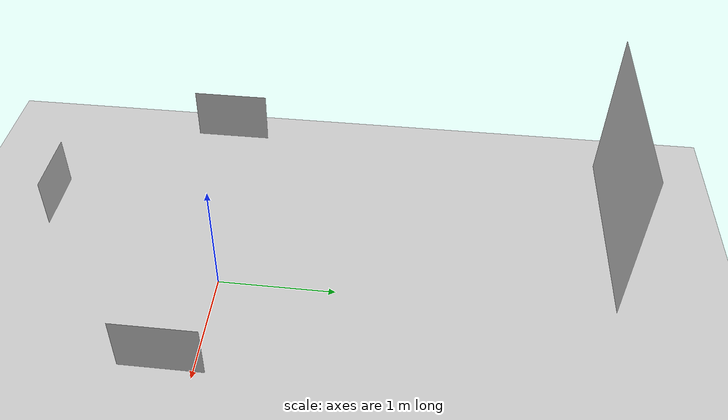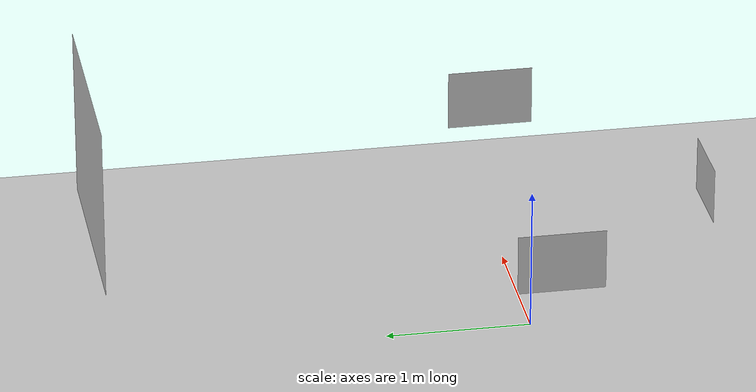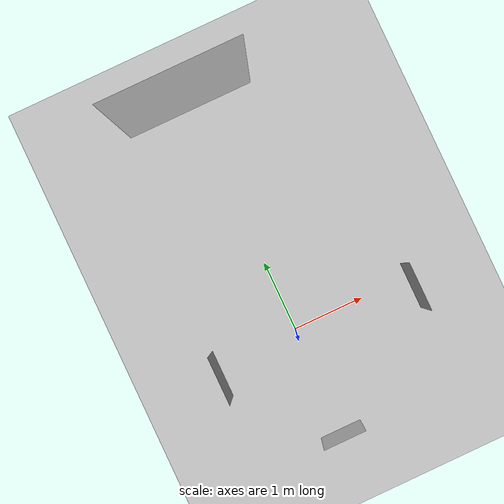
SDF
<sdf version="1.6">
 <world name="default">
  <light name="sun" type="directional">
   <pose>0 0 10 0 -0 0</pose>
   <diffuse>0.8 0.8 0.8 1</diffuse>
   <specular>0.2 0.2 0.2 1</specular>
   <attenuation>
    <range>1000</range>
    <constant>0.9</constant>
    <linear>0.01</linear>
    <quadratic>0.001</quadratic>
   </attenuation>
   <direction>-0.5 0.1 -0.9</direction>
  </light>
  <model name="ground_plane">
   <static>1</static>
   <link name="link">
    <collision name="collision">
     <geometry><plane><normal>0 0 1</normal><size>100 100</size></plane></geometry>
     <surface>
      <contact><collide_bitmask>65535</collide_bitmask></contact>
      <friction><ode><mu>100</mu><mu2>50</mu2></ode></friction>
     </surface>
    </collision>
    <visual name="visual">
     <cast_shadows>0</cast_shadows>
     <geometry><plane><normal>0 0 1</normal><size>100 100</size></plane></geometry>
     <material>
      <script><uri>file://media/materials/scripts/gazebo.material</uri><name>Gazebo/Grey</name></script>
     </material>
    </visual>
   </link>
  </model>
  <gravity>0 0 -9.8</gravity>
  <magnetic_field>6e-06 2.3e-05 -4.2e-05</magnetic_field>
  <atmosphere type="adiabatic"/>
  <physics name="default_physics" default="0" type="ode">
   <max_step_size>0.001</max_step_size>
   <real_time_factor>1</real_time_factor>
   <real_time_update_rate>1000</real_time_update_rate>
  </physics>
  <scene><ambient>0.4 0.4 0.4 1</ambient><background>0.7 0.7 0.7 1</background><shadows>1</shadows></scene>
  <audio><device>default</device></audio>
  <spherical_coordinates>
   <surface_model>EARTH_WGS84</surface_model>
   <latitude_deg>0</latitude_deg>
   <longitude_deg>0</longitude_deg>
   <elevation>0</elevation>
   <heading_deg>0</heading_deg>
  </spherical_coordinates>
  <model name="calibration_plane">
   <static>1</static>
   <link name="link">
    <visual name="visual">
     <geometry><mesh><uri>model://calibration_plane2/meshes/calibration_plane.dae</uri></mesh></geometry>
    </visual>
   </link>
   <pose>1.5 0 1 3.14159 -1.57079 -3.14159</pose>
  </model>
  <model name="calibration_plane1">
   <static>1</static>
   <link name="link">
    <visual name="visual">
     <geometry><mesh><uri>model://calibration_plane1/meshes/calibration_plane.dae</uri></mesh></geometry>
    </visual>
   </link>
   <pose>0 3 1.5 -1.57079 1.57079 3.14159</pose>
  </model>
  <model name="calibration_plane3">
   <static>1</static>
   <link name="link">
    <visual name="visual">
     <geometry><mesh><uri>model://calibration_plane3/meshes/calibration_plane.dae</uri></mesh></geometry>
    </visual>
   </link>
   <pose>0 -1.2 1 1.57079 1.57079 3.14159</pose>
  </model>
  <model name="calibration_plane_clone">
   <static>1</static>
   <link name="link">
    <visual name="visual">
     <geometry><mesh><uri>model://calibration_plane2/meshes/calibration_plane.dae</uri></mesh></geometry>
    </visual>
   </link>
   <pose>-1 0 1 3.14159 1.57079 3.14159</pose>
  </model>
 </world>
</sdf>
